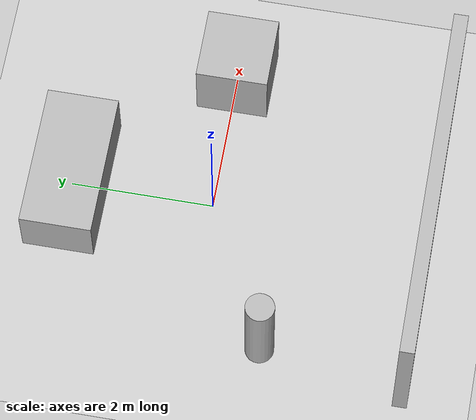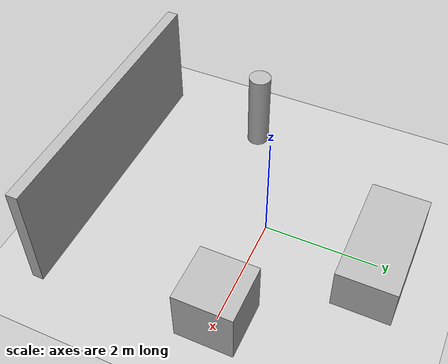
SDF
<sdf version="1.6">
  <world name="default">

    <!-- Light -->
    <include>
      <uri>model://sun</uri>
    </include>

    <!-- Ground plane -->
    <include>
      <uri>model://ground_plane</uri>
    </include>

    <!-- Box -->
    <model name="box">
      <static>true</static>
      <pose>2 0 0.5 0 0 0</pose>
      <link name="link">
        <collision name="collision">
          <geometry>
            <box><size>1 1 1</size></box>
          </geometry>
        </collision>
        <visual name="visual">
          <geometry>
            <box><size>1 1 1</size></box>
          </geometry>
        </visual>
      </link>
    </model>

    <!-- Table (flat box) -->
    <model name="table">
      <static>true</static>
      <pose>0 2 0.4 0 0 0</pose>
      <link name="link">
        <collision name="collision">
          <geometry>
            <box><size>2 1 0.8</size></box>
          </geometry>
        </collision>
        <visual name="visual">
          <geometry>
            <box><size>2 1 0.8</size></box>
          </geometry>
        </visual>
      </link>
    </model>

    <!-- Cylinder pillar -->
    <model name="pillar">
      <static>true</static>
      <pose>-2 -1 0.75 0 0 0</pose>
      <link name="link">
        <collision name="collision">
          <geometry>
            <cylinder><radius>0.2</radius><length>1.5</length></cylinder>
          </geometry>
        </collision>
        <visual name="visual">
          <geometry>
            <cylinder><radius>0.2</radius><length>1.5</length></cylinder>
          </geometry>
        </visual>
      </link>
    </model>

    <!-- Wall -->
    <model name="wall">
      <static>true</static>
      <pose>0 -3 1 0 0 0</pose>
      <link name="link">
        <collision name="collision">
          <geometry>
            <box><size>5 0.2 2</size></box>
          </geometry>
        </collision>
        <visual name="visual">
          <geometry>
            <box><size>5 0.2 2</size></box>
          </geometry>
        </visual>
      </link>
    </model>

  </world>
</sdf>
